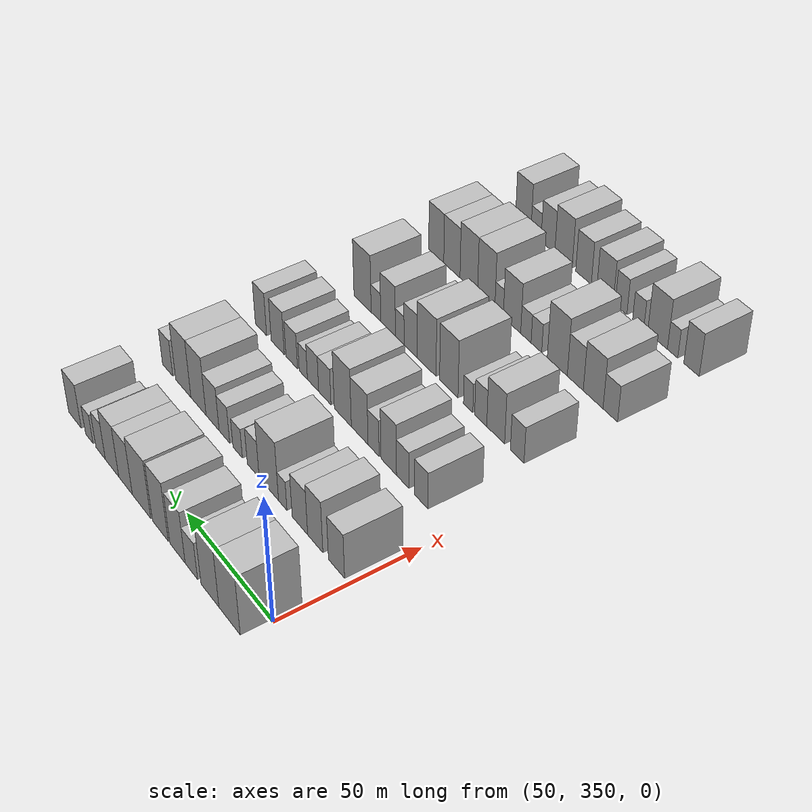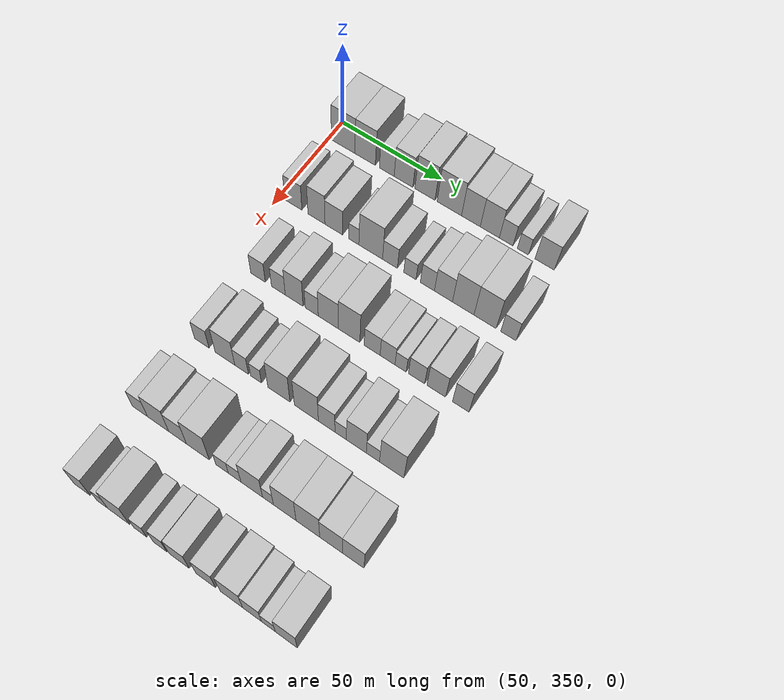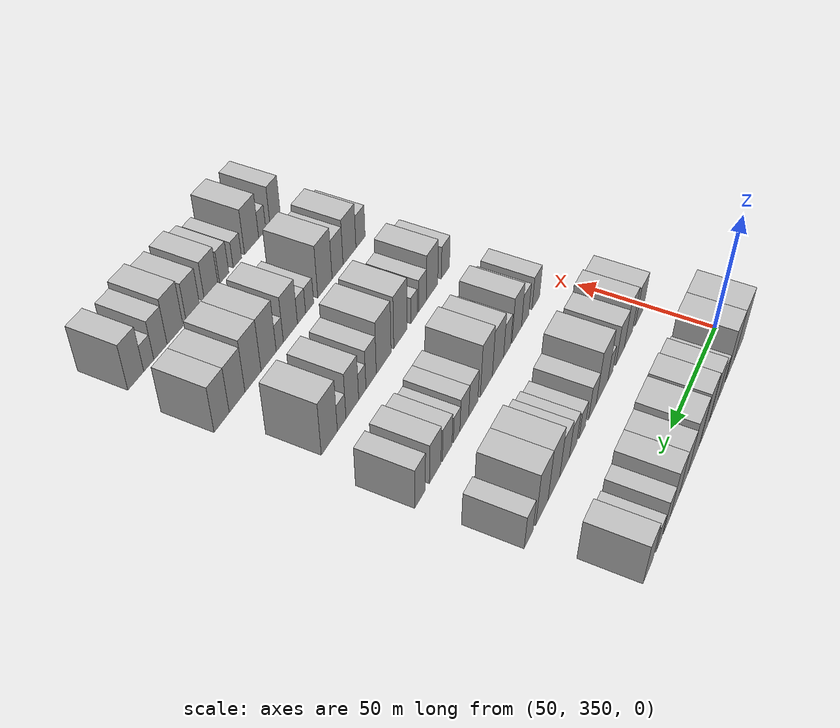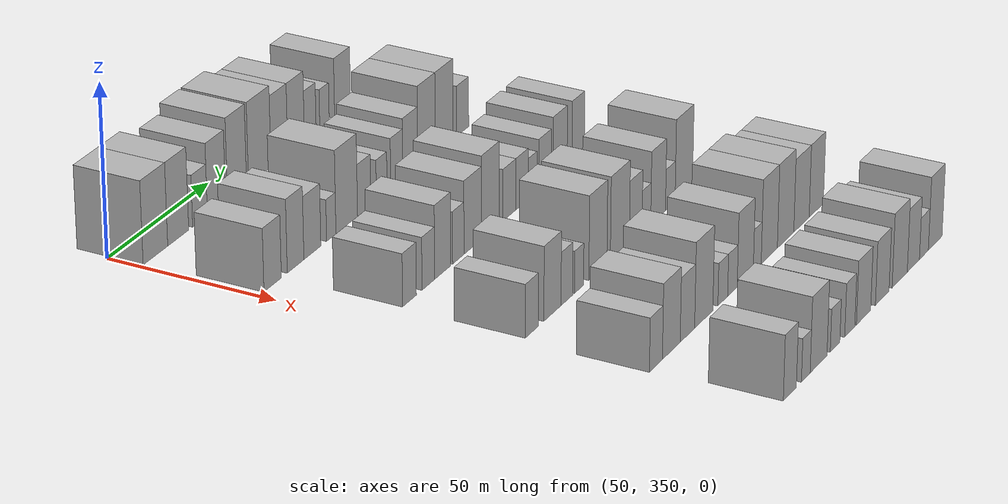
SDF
<sdf version="1.6">
 <world name="default">
  <model name="building_107">
   <static>1</static>
   <pose>50.0000 357.1216 0 0.000000 0.000000 0.000000</pose>
   <link name="link">
    <pose>0 0 12.00 0 0 0</pose>
    <collision name="collision"><geometry><box><size>20.0000 11.9933 24.0000</size></box></geometry></collision>
    <visual name="visual">
     <cast_shadows>0</cast_shadows>
     <geometry><box><size>20.0000 11.9933 24.0000</size></box></geometry>
     <material>
      <script>
       <uri>model://HANNAS_wall/materials/scripts</uri>
       <uri>model://HANNAS_wall/materials/textures</uri>
       <name>vrc/HANNAS_wall</name>
      </script>
     </material>
    </visual>
   </link>
  </model>
  <model name="building_108">
   <static>1</static>
   <pose>50.0000 368.3127 0 0.000000 0.000000 0.000000</pose>
   <link name="link">
    <pose>0 0 12.00 0 0 0</pose>
    <collision name="collision"><geometry><box><size>20.0000 10.3889 24.0000</size></box></geometry></collision>
    <visual name="visual">
     <cast_shadows>0</cast_shadows>
     <geometry><box><size>20.0000 10.3889 24.0000</size></box></geometry>
     <material>
      <script>
       <uri>model://HANNAS_wall/materials/scripts</uri>
       <uri>model://HANNAS_wall/materials/textures</uri>
       <name>vrc/HANNAS_wall</name>
      </script>
     </material>
    </visual>
   </link>
  </model>
  <model name="building_109">
   <static>1</static>
   <pose>50.0000 379.2048 0 0.000000 0.000000 0.000000</pose>
   <link name="link">
    <pose>0 0 7.50 0 0 0</pose>
    <collision name="collision"><geometry><box><size>20.0000 7.3954 15.0000</size></box></geometry></collision>
    <visual name="visual">
     <cast_shadows>0</cast_shadows>
     <geometry><box><size>20.0000 7.3954 15.0000</size></box></geometry>
     <material>
      <script>
       <uri>model://HANNAS_wall/materials/scripts</uri>
       <uri>model://HANNAS_wall/materials/textures</uri>
       <name>vrc/HANNAS_wall</name>
      </script>
     </material>
    </visual>
   </link>
  </model>
  <model name="building_110">
   <static>1</static>
   <pose>50.0000 387.5336 0 0.000000 0.000000 0.000000</pose>
   <link name="link">
    <pose>0 0 10.50 0 0 0</pose>
    <collision name="collision"><geometry><box><size>20.0000 9.2623 21.0000</size></box></geometry></collision>
    <visual name="visual">
     <cast_shadows>0</cast_shadows>
     <geometry><box><size>20.0000 9.2623 21.0000</size></box></geometry>
     <material>
      <script>
       <uri>model://HANNAS_wall/materials/scripts</uri>
       <uri>model://HANNAS_wall/materials/textures</uri>
       <name>vrc/HANNAS_wall</name>
      </script>
     </material>
    </visual>
   </link>
  </model>
  <model name="building_111">
   <static>1</static>
   <pose>50.0000 398.0849 0 0.000000 0.000000 0.000000</pose>
   <link name="link">
    <pose>0 0 12.00 0 0 0</pose>
    <collision name="collision"><geometry><box><size>20.0000 9.8403 24.0000</size></box></geometry></collision>
    <visual name="visual">
     <cast_shadows>0</cast_shadows>
     <geometry><box><size>20.0000 9.8403 24.0000</size></box></geometry>
     <material>
      <script>
       <uri>model://HANNAS_wall/materials/scripts</uri>
       <uri>model://HANNAS_wall/materials/textures</uri>
       <name>vrc/HANNAS_wall</name>
      </script>
     </material>
    </visual>
   </link>
  </model>
  <model name="building_112">
   <static>1</static>
   <pose>50.0000 409.9015 0 0.000000 0.000000 0.000000</pose>
   <link name="link">
    <pose>0 0 12.00 0 0 0</pose>
    <collision name="collision"><geometry><box><size>20.0000 11.7929 24.0000</size></box></geometry></collision>
    <visual name="visual">
     <cast_shadows>0</cast_shadows>
     <geometry><box><size>20.0000 11.7929 24.0000</size></box></geometry>
     <material>
      <script>
       <uri>model://HANNAS_wall/materials/scripts</uri>
       <uri>model://HANNAS_wall/materials/textures</uri>
       <name>vrc/HANNAS_wall</name>
      </script>
     </material>
    </visual>
   </link>
  </model>
  <model name="building_113">
   <static>1</static>
   <pose>50.0000 420.2565 0 0.000000 0.000000 0.000000</pose>
   <link name="link">
    <pose>0 0 10.50 0 0 0</pose>
    <collision name="collision"><geometry><box><size>20.0000 8.9171 21.0000</size></box></geometry></collision>
    <visual name="visual">
     <cast_shadows>0</cast_shadows>
     <geometry><box><size>20.0000 8.9171 21.0000</size></box></geometry>
     <material>
      <script>
       <uri>model://HANNAS_wall/materials/scripts</uri>
       <uri>model://HANNAS_wall/materials/textures</uri>
       <name>vrc/HANNAS_wall</name>
      </script>
     </material>
    </visual>
   </link>
  </model>
  <model name="building_114">
   <static>1</static>
   <pose>50.0000 429.2032 0 0.000000 0.000000 0.000000</pose>
   <link name="link">
    <pose>0 0 10.50 0 0 0</pose>
    <collision name="collision"><geometry><box><size>20.0000 8.9763 21.0000</size></box></geometry></collision>
    <visual name="visual">
     <cast_shadows>0</cast_shadows>
     <geometry><box><size>20.0000 8.9763 21.0000</size></box></geometry>
     <material>
      <script>
       <uri>model://HANNAS_wall/materials/scripts</uri>
       <uri>model://HANNAS_wall/materials/textures</uri>
       <name>vrc/HANNAS_wall</name>
      </script>
     </material>
    </visual>
   </link>
  </model>
  <model name="building_115">
   <static>1</static>
   <pose>50.0000 436.8798 0 0.000000 0.000000 0.000000</pose>
   <link name="link">
    <pose>0 0 7.50 0 0 0</pose>
    <collision name="collision"><geometry><box><size>20.0000 6.3770 15.0000</size></box></geometry></collision>
    <visual name="visual">
     <cast_shadows>0</cast_shadows>
     <geometry><box><size>20.0000 6.3770 15.0000</size></box></geometry>
     <material>
      <script>
       <uri>model://HANNAS_wall/materials/scripts</uri>
       <uri>model://HANNAS_wall/materials/textures</uri>
       <name>vrc/HANNAS_wall</name>
      </script>
     </material>
    </visual>
   </link>
  </model>
  <model name="building_116">
   <static>1</static>
   <pose>50.0000 444.6532 0 0.000000 0.000000 0.000000</pose>
   <link name="link">
    <pose>0 0 6.00 0 0 0</pose>
    <collision name="collision"><geometry><box><size>20.0000 5.1697 12.0000</size></box></geometry></collision>
    <visual name="visual">
     <cast_shadows>0</cast_shadows>
     <geometry><box><size>20.0000 5.1697 12.0000</size></box></geometry>
     <material>
      <script>
       <uri>model://HANNAS_wall/materials/scripts</uri>
       <uri>model://HANNAS_wall/materials/textures</uri>
       <name>vrc/HANNAS_wall</name>
      </script>
     </material>
    </visual>
   </link>
  </model>
  <model name="building_117">
   <static>1</static>
   <pose>50.0000 454.6689 0 0.000000 0.000000 0.000000</pose>
   <link name="link">
    <pose>0 0 9.00 0 0 0</pose>
    <collision name="collision"><geometry><box><size>20.0000 8.8618 18.0000</size></box></geometry></collision>
    <visual name="visual">
     <cast_shadows>0</cast_shadows>
     <geometry><box><size>20.0000 8.8618 18.0000</size></box></geometry>
     <material>
      <script>
       <uri>model://HANNAS_wall/materials/scripts</uri>
       <uri>model://HANNAS_wall/materials/textures</uri>
       <name>vrc/HANNAS_wall</name>
      </script>
     </material>
    </visual>
   </link>
  </model>
  <model name="building_233">
   <static>1</static>
   <pose>85.0000 356.8966 0 0.000000 0.000000 0.000000</pose>
   <link name="link">
    <pose>0 0 9.00 0 0 0</pose>
    <collision name="collision"><geometry><box><size>20.0000 8.7172 18.0000</size></box></geometry></collision>
    <visual name="visual">
     <cast_shadows>0</cast_shadows>
     <geometry><box><size>20.0000 8.7172 18.0000</size></box></geometry>
     <material>
      <script>
       <uri>model://HANNAS_wall/materials/scripts</uri>
       <uri>model://HANNAS_wall/materials/textures</uri>
       <name>vrc/HANNAS_wall</name>
      </script>
     </material>
    </visual>
   </link>
  </model>
  <model name="building_234">
   <static>1</static>
   <pose>85.0000 368.4994 0 0.000000 0.000000 0.000000</pose>
   <link name="link">
    <pose>0 0 10.50 0 0 0</pose>
    <collision name="collision"><geometry><box><size>20.0000 8.4883 21.0000</size></box></geometry></collision>
    <visual name="visual">
     <cast_shadows>0</cast_shadows>
     <geometry><box><size>20.0000 8.4883 21.0000</size></box></geometry>
     <material>
      <script>
       <uri>model://HANNAS_wall/materials/scripts</uri>
       <uri>model://HANNAS_wall/materials/textures</uri>
       <name>vrc/HANNAS_wall</name>
      </script>
     </material>
    </visual>
   </link>
  </model>
  <model name="building_235">
   <static>1</static>
   <pose>85.0000 377.1117 0 0.000000 0.000000 0.000000</pose>
   <link name="link">
    <pose>0 0 9.00 0 0 0</pose>
    <collision name="collision"><geometry><box><size>20.0000 8.7362 18.0000</size></box></geometry></collision>
    <visual name="visual">
     <cast_shadows>0</cast_shadows>
     <geometry><box><size>20.0000 8.7362 18.0000</size></box></geometry>
     <material>
      <script>
       <uri>model://HANNAS_wall/materials/scripts</uri>
       <uri>model://HANNAS_wall/materials/textures</uri>
       <name>vrc/HANNAS_wall</name>
      </script>
     </material>
    </visual>
   </link>
  </model>
  <model name="building_236">
   <static>1</static>
   <pose>85.0000 386.9228 0 0.000000 0.000000 0.000000</pose>
   <link name="link">
    <pose>0 0 6.00 0 0 0</pose>
    <collision name="collision"><geometry><box><size>20.0000 4.8861 12.0000</size></box></geometry></collision>
    <visual name="visual">
     <cast_shadows>0</cast_shadows>
     <geometry><box><size>20.0000 4.8861 12.0000</size></box></geometry>
     <material>
      <script>
       <uri>model://HANNAS_wall/materials/scripts</uri>
       <uri>model://HANNAS_wall/materials/textures</uri>
       <name>vrc/HANNAS_wall</name>
      </script>
     </material>
    </visual>
   </link>
  </model>
  <model name="building_237">
   <static>1</static>
   <pose>85.0000 395.0872 0 0.000000 0.000000 0.000000</pose>
   <link name="link">
    <pose>0 0 12.00 0 0 0</pose>
    <collision name="collision"><geometry><box><size>20.0000 11.4426 24.0000</size></box></geometry></collision>
    <visual name="visual">
     <cast_shadows>0</cast_shadows>
     <geometry><box><size>20.0000 11.4426 24.0000</size></box></geometry>
     <material>
      <script>
       <uri>model://HANNAS_wall/materials/scripts</uri>
       <uri>model://HANNAS_wall/materials/textures</uri>
       <name>vrc/HANNAS_wall</name>
      </script>
     </material>
    </visual>
   </link>
  </model>
  <model name="building_238">
   <static>1</static>
   <pose>85.0000 404.3621 0 0.000000 0.000000 0.000000</pose>
   <link name="link">
    <pose>0 0 7.50 0 0 0</pose>
    <collision name="collision"><geometry><box><size>20.0000 7.1072 15.0000</size></box></geometry></collision>
    <visual name="visual">
     <cast_shadows>0</cast_shadows>
     <geometry><box><size>20.0000 7.1072 15.0000</size></box></geometry>
     <material>
      <script>
       <uri>model://HANNAS_wall/materials/scripts</uri>
       <uri>model://HANNAS_wall/materials/textures</uri>
       <name>vrc/HANNAS_wall</name>
      </script>
     </material>
    </visual>
   </link>
  </model>
  <model name="building_239">
   <static>1</static>
   <pose>85.0000 413.8233 0 0.000000 0.000000 0.000000</pose>
   <link name="link">
    <pose>0 0 6.00 0 0 0</pose>
    <collision name="collision"><geometry><box><size>20.0000 5.8154 12.0000</size></box></geometry></collision>
    <visual name="visual">
     <cast_shadows>0</cast_shadows>
     <geometry><box><size>20.0000 5.8154 12.0000</size></box></geometry>
     <material>
      <script>
       <uri>model://HANNAS_wall/materials/scripts</uri>
       <uri>model://HANNAS_wall/materials/textures</uri>
       <name>vrc/HANNAS_wall</name>
      </script>
     </material>
    </visual>
   </link>
  </model>
  <model name="building_240">
   <static>1</static>
   <pose>85.0000 422.0443 0 0.000000 0.000000 0.000000</pose>
   <link name="link">
    <pose>0 0 7.50 0 0 0</pose>
    <collision name="collision"><geometry><box><size>20.0000 6.6266 15.0000</size></box></geometry></collision>
    <visual name="visual">
     <cast_shadows>0</cast_shadows>
     <geometry><box><size>20.0000 6.6266 15.0000</size></box></geometry>
     <material>
      <script>
       <uri>model://HANNAS_wall/materials/scripts</uri>
       <uri>model://HANNAS_wall/materials/textures</uri>
       <name>vrc/HANNAS_wall</name>
      </script>
     </material>
    </visual>
   </link>
  </model>
  <model name="building_241">
   <static>1</static>
   <pose>85.0000 429.5247 0 0.000000 0.000000 0.000000</pose>
   <link name="link">
    <pose>0 0 9.00 0 0 0</pose>
    <collision name="collision"><geometry><box><size>20.0000 8.3342 18.0000</size></box></geometry></collision>
    <visual name="visual">
     <cast_shadows>0</cast_shadows>
     <geometry><box><size>20.0000 8.3342 18.0000</size></box></geometry>
     <material>
      <script>
       <uri>model://HANNAS_wall/materials/scripts</uri>
       <uri>model://HANNAS_wall/materials/textures</uri>
       <name>vrc/HANNAS_wall</name>
      </script>
     </material>
    </visual>
   </link>
  </model>
  <model name="building_242">
   <static>1</static>
   <pose>85.0000 438.6293 0 0.000000 0.000000 0.000000</pose>
   <link name="link">
    <pose>0 0 12.00 0 0 0</pose>
    <collision name="collision"><geometry><box><size>20.0000 9.8749 24.0000</size></box></geometry></collision>
    <visual name="visual">
     <cast_shadows>0</cast_shadows>
     <geometry><box><size>20.0000 9.8749 24.0000</size></box></geometry>
     <material>
      <script>
       <uri>model://HANNAS_wall/materials/scripts</uri>
       <uri>model://HANNAS_wall/materials/textures</uri>
       <name>vrc/HANNAS_wall</name>
      </script>
     </material>
    </visual>
   </link>
  </model>
  <model name="building_243">
   <static>1</static>
   <pose>85.0000 448.6095 0 0.000000 0.000000 0.000000</pose>
   <link name="link">
    <pose>0 0 12.00 0 0 0</pose>
    <collision name="collision"><geometry><box><size>20.0000 10.0855 24.0000</size></box></geometry></collision>
    <visual name="visual">
     <cast_shadows>0</cast_shadows>
     <geometry><box><size>20.0000 10.0855 24.0000</size></box></geometry>
     <material>
      <script>
       <uri>model://HANNAS_wall/materials/scripts</uri>
       <uri>model://HANNAS_wall/materials/textures</uri>
       <name>vrc/HANNAS_wall</name>
      </script>
     </material>
    </visual>
   </link>
  </model>
  <model name="building_244">
   <static>1</static>
   <pose>85.0000 459.1244 0 0.000000 0.000000 0.000000</pose>
   <link name="link">
    <pose>0 0 7.50 0 0 0</pose>
    <collision name="collision"><geometry><box><size>20.0000 6.9444 15.0000</size></box></geometry></collision>
    <visual name="visual">
     <cast_shadows>0</cast_shadows>
     <geometry><box><size>20.0000 6.9444 15.0000</size></box></geometry>
     <material>
      <script>
       <uri>model://HANNAS_wall/materials/scripts</uri>
       <uri>model://HANNAS_wall/materials/textures</uri>
       <name>vrc/HANNAS_wall</name>
      </script>
     </material>
    </visual>
   </link>
  </model>
  <model name="building_356">
   <static>1</static>
   <pose>120.0000 365.2817 0 0.000000 0.000000 0.000000</pose>
   <link name="link">
    <pose>0 0 7.50 0 0 0</pose>
    <collision name="collision"><geometry><box><size>20.0000 7.1907 15.0000</size></box></geometry></collision>
    <visual name="visual">
     <cast_shadows>0</cast_shadows>
     <geometry><box><size>20.0000 7.1907 15.0000</size></box></geometry>
     <material>
      <script>
       <uri>model://HANNAS_wall/materials/scripts</uri>
       <uri>model://HANNAS_wall/materials/textures</uri>
       <name>vrc/HANNAS_wall</name>
      </script>
     </material>
    </visual>
   </link>
  </model>
  <model name="building_357">
   <static>1</static>
   <pose>120.0000 375.2413 0 0.000000 0.000000 0.000000</pose>
   <link name="link">
    <pose>0 0 7.50 0 0 0</pose>
    <collision name="collision"><geometry><box><size>20.0000 6.7286 15.0000</size></box></geometry></collision>
    <visual name="visual">
     <cast_shadows>0</cast_shadows>
     <geometry><box><size>20.0000 6.7286 15.0000</size></box></geometry>
     <material>
      <script>
       <uri>model://HANNAS_wall/materials/scripts</uri>
       <uri>model://HANNAS_wall/materials/textures</uri>
       <name>vrc/HANNAS_wall</name>
      </script>
     </material>
    </visual>
   </link>
  </model>
  <model name="building_358">
   <static>1</static>
   <pose>120.0000 382.9077 0 0.000000 0.000000 0.000000</pose>
   <link name="link">
    <pose>0 0 10.50 0 0 0</pose>
    <collision name="collision"><geometry><box><size>20.0000 8.6042 21.0000</size></box></geometry></collision>
    <visual name="visual">
     <cast_shadows>0</cast_shadows>
     <geometry><box><size>20.0000 8.6042 21.0000</size></box></geometry>
     <material>
      <script>
       <uri>model://HANNAS_wall/materials/scripts</uri>
       <uri>model://HANNAS_wall/materials/textures</uri>
       <name>vrc/HANNAS_wall</name>
      </script>
     </material>
    </visual>
   </link>
  </model>
  <model name="building_359">
   <static>1</static>
   <pose>120.0000 391.3324 0 0.000000 0.000000 0.000000</pose>
   <link name="link">
    <pose>0 0 7.50 0 0 0</pose>
    <collision name="collision"><geometry><box><size>20.0000 6.2453 15.0000</size></box></geometry></collision>
    <visual name="visual">
     <cast_shadows>0</cast_shadows>
     <geometry><box><size>20.0000 6.2453 15.0000</size></box></geometry>
     <material>
      <script>
       <uri>model://HANNAS_wall/materials/scripts</uri>
       <uri>model://HANNAS_wall/materials/textures</uri>
       <name>vrc/HANNAS_wall</name>
      </script>
     </material>
    </visual>
   </link>
  </model>
  <model name="building_360">
   <static>1</static>
   <pose>120.0000 399.2431 0 0.000000 0.000000 0.000000</pose>
   <link name="link">
    <pose>0 0 10.50 0 0 0</pose>
    <collision name="collision"><geometry><box><size>20.0000 9.5761 21.0000</size></box></geometry></collision>
    <visual name="visual">
     <cast_shadows>0</cast_shadows>
     <geometry><box><size>20.0000 9.5761 21.0000</size></box></geometry>
     <material>
      <script>
       <uri>model://HANNAS_wall/materials/scripts</uri>
       <uri>model://HANNAS_wall/materials/textures</uri>
       <name>vrc/HANNAS_wall</name>
      </script>
     </material>
    </visual>
   </link>
  </model>
  <model name="building_361">
   <static>1</static>
   <pose>120.0000 409.0201 0 0.000000 0.000000 0.000000</pose>
   <link name="link">
    <pose>0 0 12.00 0 0 0</pose>
    <collision name="collision"><geometry><box><size>20.0000 9.9779 24.0000</size></box></geometry></collision>
    <visual name="visual">
     <cast_shadows>0</cast_shadows>
     <geometry><box><size>20.0000 9.9779 24.0000</size></box></geometry>
     <material>
      <script>
       <uri>model://HANNAS_wall/materials/scripts</uri>
       <uri>model://HANNAS_wall/materials/textures</uri>
       <name>vrc/HANNAS_wall</name>
      </script>
     </material>
    </visual>
   </link>
  </model>
  <model name="building_362">
   <static>1</static>
   <pose>120.0000 419.6896 0 0.000000 0.000000 0.000000</pose>
   <link name="link">
    <pose>0 0 7.50 0 0 0</pose>
    <collision name="collision"><geometry><box><size>20.0000 7.3611 15.0000</size></box></geometry></collision>
    <visual name="visual">
     <cast_shadows>0</cast_shadows>
     <geometry><box><size>20.0000 7.3611 15.0000</size></box></geometry>
     <material>
      <script>
       <uri>model://HANNAS_wall/materials/scripts</uri>
       <uri>model://HANNAS_wall/materials/textures</uri>
       <name>vrc/HANNAS_wall</name>
      </script>
     </material>
    </visual>
   </link>
  </model>
  <model name="building_363">
   <static>1</static>
   <pose>120.0000 426.7917 0 0.000000 0.000000 0.000000</pose>
   <link name="link">
    <pose>0 0 7.50 0 0 0</pose>
    <collision name="collision"><geometry><box><size>20.0000 6.8429 15.0000</size></box></geometry></collision>
    <visual name="visual">
     <cast_shadows>0</cast_shadows>
     <geometry><box><size>20.0000 6.8429 15.0000</size></box></geometry>
     <material>
      <script>
       <uri>model://HANNAS_wall/materials/scripts</uri>
       <uri>model://HANNAS_wall/materials/textures</uri>
       <name>vrc/HANNAS_wall</name>
      </script>
     </material>
    </visual>
   </link>
  </model>
  <model name="building_364">
   <static>1</static>
   <pose>120.0000 432.7662 0 0.000000 0.000000 0.000000</pose>
   <link name="link">
    <pose>0 0 6.00 0 0 0</pose>
    <collision name="collision"><geometry><box><size>20.0000 5.1061 12.0000</size></box></geometry></collision>
    <visual name="visual">
     <cast_shadows>0</cast_shadows>
     <geometry><box><size>20.0000 5.1061 12.0000</size></box></geometry>
     <material>
      <script>
       <uri>model://HANNAS_wall/materials/scripts</uri>
       <uri>model://HANNAS_wall/materials/textures</uri>
       <name>vrc/HANNAS_wall</name>
      </script>
     </material>
    </visual>
   </link>
  </model>
  <model name="building_365">
   <static>1</static>
   <pose>120.0000 439.9661 0 0.000000 0.000000 0.000000</pose>
   <link name="link">
    <pose>0 0 7.50 0 0 0</pose>
    <collision name="collision"><geometry><box><size>20.0000 7.2938 15.0000</size></box></geometry></collision>
    <visual name="visual">
     <cast_shadows>0</cast_shadows>
     <geometry><box><size>20.0000 7.2938 15.0000</size></box></geometry>
     <material>
      <script>
       <uri>model://HANNAS_wall/materials/scripts</uri>
       <uri>model://HANNAS_wall/materials/textures</uri>
       <name>vrc/HANNAS_wall</name>
      </script>
     </material>
    </visual>
   </link>
  </model>
  <model name="building_366">
   <static>1</static>
   <pose>120.0000 448.7859 0 0.000000 0.000000 0.000000</pose>
   <link name="link">
    <pose>0 0 9.00 0 0 0</pose>
    <collision name="collision"><geometry><box><size>20.0000 8.3458 18.0000</size></box></geometry></collision>
    <visual name="visual">
     <cast_shadows>0</cast_shadows>
     <geometry><box><size>20.0000 8.3458 18.0000</size></box></geometry>
     <material>
      <script>
       <uri>model://HANNAS_wall/materials/scripts</uri>
       <uri>model://HANNAS_wall/materials/textures</uri>
       <name>vrc/HANNAS_wall</name>
      </script>
     </material>
    </visual>
   </link>
  </model>
  <model name="building_367">
   <static>1</static>
   <pose>120.0000 459.6276 0 0.000000 0.000000 0.000000</pose>
   <link name="link">
    <pose>0 0 9.00 0 0 0</pose>
    <collision name="collision"><geometry><box><size>20.0000 7.3377 18.0000</size></box></geometry></collision>
    <visual name="visual">
     <cast_shadows>0</cast_shadows>
     <geometry><box><size>20.0000 7.3377 18.0000</size></box></geometry>
     <material>
      <script>
       <uri>model://HANNAS_wall/materials/scripts</uri>
       <uri>model://HANNAS_wall/materials/textures</uri>
       <name>vrc/HANNAS_wall</name>
      </script>
     </material>
    </visual>
   </link>
  </model>
  <model name="building_484">
   <static>1</static>
   <pose>155.0000 364.7329 0 0.000000 0.000000 0.000000</pose>
   <link name="link">
    <pose>0 0 7.50 0 0 0</pose>
    <collision name="collision"><geometry><box><size>20.0000 7.0130 15.0000</size></box></geometry></collision>
    <visual name="visual">
     <cast_shadows>0</cast_shadows>
     <geometry><box><size>20.0000 7.0130 15.0000</size></box></geometry>
     <material>
      <script>
       <uri>model://HANNAS_wall/materials/scripts</uri>
       <uri>model://HANNAS_wall/materials/textures</uri>
       <name>vrc/HANNAS_wall</name>
      </script>
     </material>
    </visual>
   </link>
  </model>
  <model name="building_485">
   <static>1</static>
   <pose>155.0000 375.9579 0 0.000000 0.000000 0.000000</pose>
   <link name="link">
    <pose>0 0 10.50 0 0 0</pose>
    <collision name="collision"><geometry><box><size>20.0000 9.4370 21.0000</size></box></geometry></collision>
    <visual name="visual">
     <cast_shadows>0</cast_shadows>
     <geometry><box><size>20.0000 9.4370 21.0000</size></box></geometry>
     <material>
      <script>
       <uri>model://HANNAS_wall/materials/scripts</uri>
       <uri>model://HANNAS_wall/materials/textures</uri>
       <name>vrc/HANNAS_wall</name>
      </script>
     </material>
    </visual>
   </link>
  </model>
  <model name="building_486">
   <static>1</static>
   <pose>155.0000 383.9212 0 0.000000 0.000000 0.000000</pose>
   <link name="link">
    <pose>0 0 7.50 0 0 0</pose>
    <collision name="collision"><geometry><box><size>20.0000 6.4896 15.0000</size></box></geometry></collision>
    <visual name="visual">
     <cast_shadows>0</cast_shadows>
     <geometry><box><size>20.0000 6.4896 15.0000</size></box></geometry>
     <material>
      <script>
       <uri>model://HANNAS_wall/materials/scripts</uri>
       <uri>model://HANNAS_wall/materials/textures</uri>
       <name>vrc/HANNAS_wall</name>
      </script>
     </material>
    </visual>
   </link>
  </model>
  <model name="building_487">
   <static>1</static>
   <pose>155.0000 390.7141 0 0.000000 0.000000 0.000000</pose>
   <link name="link">
    <pose>0 0 6.00 0 0 0</pose>
    <collision name="collision"><geometry><box><size>20.0000 5.0963 12.0000</size></box></geometry></collision>
    <visual name="visual">
     <cast_shadows>0</cast_shadows>
     <geometry><box><size>20.0000 5.0963 12.0000</size></box></geometry>
     <material>
      <script>
       <uri>model://HANNAS_wall/materials/scripts</uri>
       <uri>model://HANNAS_wall/materials/textures</uri>
       <name>vrc/HANNAS_wall</name>
      </script>
     </material>
    </visual>
   </link>
  </model>
  <model name="building_488">
   <static>1</static>
   <pose>155.0000 401.4008 0 0.000000 0.000000 0.000000</pose>
   <link name="link">
    <pose>0 0 12.00 0 0 0</pose>
    <collision name="collision"><geometry><box><size>20.0000 10.2771 24.0000</size></box></geometry></collision>
    <visual name="visual">
     <cast_shadows>0</cast_shadows>
     <geometry><box><size>20.0000 10.2771 24.0000</size></box></geometry>
     <material>
      <script>
       <uri>model://HANNAS_wall/materials/scripts</uri>
       <uri>model://HANNAS_wall/materials/textures</uri>
       <name>vrc/HANNAS_wall</name>
      </script>
     </material>
    </visual>
   </link>
  </model>
  <model name="building_489">
   <static>1</static>
   <pose>155.0000 414.0420 0 0.000000 0.000000 0.000000</pose>
   <link name="link">
    <pose>0 0 12.00 0 0 0</pose>
    <collision name="collision"><geometry><box><size>20.0000 11.0053 24.0000</size></box></geometry></collision>
    <visual name="visual">
     <cast_shadows>0</cast_shadows>
     <geometry><box><size>20.0000 11.0053 24.0000</size></box></geometry>
     <material>
      <script>
       <uri>model://HANNAS_wall/materials/scripts</uri>
       <uri>model://HANNAS_wall/materials/textures</uri>
       <name>vrc/HANNAS_wall</name>
      </script>
     </material>
    </visual>
   </link>
  </model>
  <model name="building_490">
   <static>1</static>
   <pose>155.0000 423.2867 0 0.000000 0.000000 0.000000</pose>
   <link name="link">
    <pose>0 0 9.00 0 0 0</pose>
    <collision name="collision"><geometry><box><size>20.0000 7.4840 18.0000</size></box></geometry></collision>
    <visual name="visual">
     <cast_shadows>0</cast_shadows>
     <geometry><box><size>20.0000 7.4840 18.0000</size></box></geometry>
     <material>
      <script>
       <uri>model://HANNAS_wall/materials/scripts</uri>
       <uri>model://HANNAS_wall/materials/textures</uri>
       <name>vrc/HANNAS_wall</name>
      </script>
     </material>
    </visual>
   </link>
  </model>
  <model name="building_491">
   <static>1</static>
   <pose>155.0000 429.6019 0 0.000000 0.000000 0.000000</pose>
   <link name="link">
    <pose>0 0 6.00 0 0 0</pose>
    <collision name="collision"><geometry><box><size>20.0000 5.1466 12.0000</size></box></geometry></collision>
    <visual name="visual">
     <cast_shadows>0</cast_shadows>
     <geometry><box><size>20.0000 5.1466 12.0000</size></box></geometry>
     <material>
      <script>
       <uri>model://HANNAS_wall/materials/scripts</uri>
       <uri>model://HANNAS_wall/materials/textures</uri>
       <name>vrc/HANNAS_wall</name>
      </script>
     </material>
    </visual>
   </link>
  </model>
  <model name="building_492">
   <static>1</static>
   <pose>155.0000 436.5955 0 0.000000 0.000000 0.000000</pose>
   <link name="link">
    <pose>0 0 10.50 0 0 0</pose>
    <collision name="collision"><geometry><box><size>20.0000 8.8405 21.0000</size></box></geometry></collision>
    <visual name="visual">
     <cast_shadows>0</cast_shadows>
     <geometry><box><size>20.0000 8.8405 21.0000</size></box></geometry>
     <material>
      <script>
       <uri>model://HANNAS_wall/materials/scripts</uri>
       <uri>model://HANNAS_wall/materials/textures</uri>
       <name>vrc/HANNAS_wall</name>
      </script>
     </material>
    </visual>
   </link>
  </model>
  <model name="building_493">
   <static>1</static>
   <pose>155.0000 443.9247 0 0.000000 0.000000 0.000000</pose>
   <link name="link">
    <pose>0 0 6.00 0 0 0</pose>
    <collision name="collision"><geometry><box><size>20.0000 5.8177 12.0000</size></box></geometry></collision>
    <visual name="visual">
     <cast_shadows>0</cast_shadows>
     <geometry><box><size>20.0000 5.8177 12.0000</size></box></geometry>
     <material>
      <script>
       <uri>model://HANNAS_wall/materials/scripts</uri>
       <uri>model://HANNAS_wall/materials/textures</uri>
       <name>vrc/HANNAS_wall</name>
      </script>
     </material>
    </visual>
   </link>
  </model>
  <model name="building_494">
   <static>1</static>
   <pose>155.0000 452.1549 0 0.000000 0.000000 0.000000</pose>
   <link name="link">
    <pose>0 0 12.00 0 0 0</pose>
    <collision name="collision"><geometry><box><size>20.0000 10.6428 24.0000</size></box></geometry></collision>
    <visual name="visual">
     <cast_shadows>0</cast_shadows>
     <geometry><box><size>20.0000 10.6428 24.0000</size></box></geometry>
     <material>
      <script>
       <uri>model://HANNAS_wall/materials/scripts</uri>
       <uri>model://HANNAS_wall/materials/textures</uri>
       <name>vrc/HANNAS_wall</name>
      </script>
     </material>
    </visual>
   </link>
  </model>
  <model name="building_615">
   <static>1</static>
   <pose>190.0000 363.1716 0 0.000000 0.000000 0.000000</pose>
   <link name="link">
    <pose>0 0 7.50 0 0 0</pose>
    <collision name="collision"><geometry><box><size>20.0000 7.2971 15.0000</size></box></geometry></collision>
    <visual name="visual">
     <cast_shadows>0</cast_shadows>
     <geometry><box><size>20.0000 7.2971 15.0000</size></box></geometry>
     <material>
      <script>
       <uri>model://HANNAS_wall/materials/scripts</uri>
       <uri>model://HANNAS_wall/materials/textures</uri>
       <name>vrc/HANNAS_wall</name>
      </script>
     </material>
    </visual>
   </link>
  </model>
  <model name="building_616">
   <static>1</static>
   <pose>190.0000 371.8565 0 0.000000 0.000000 0.000000</pose>
   <link name="link">
    <pose>0 0 10.50 0 0 0</pose>
    <collision name="collision"><geometry><box><size>20.0000 10.0728 21.0000</size></box></geometry></collision>
    <visual name="visual">
     <cast_shadows>0</cast_shadows>
     <geometry><box><size>20.0000 10.0728 21.0000</size></box></geometry>
     <material>
      <script>
       <uri>model://HANNAS_wall/materials/scripts</uri>
       <uri>model://HANNAS_wall/materials/textures</uri>
       <name>vrc/HANNAS_wall</name>
      </script>
     </material>
    </visual>
   </link>
  </model>
  <model name="building_617">
   <static>1</static>
   <pose>190.0000 381.0560 0 0.000000 0.000000 0.000000</pose>
   <link name="link">
    <pose>0 0 9.00 0 0 0</pose>
    <collision name="collision"><geometry><box><size>20.0000 8.3263 18.0000</size></box></geometry></collision>
    <visual name="visual">
     <cast_shadows>0</cast_shadows>
     <geometry><box><size>20.0000 8.3263 18.0000</size></box></geometry>
     <material>
      <script>
       <uri>model://HANNAS_wall/materials/scripts</uri>
       <uri>model://HANNAS_wall/materials/textures</uri>
       <name>vrc/HANNAS_wall</name>
      </script>
     </material>
    </visual>
   </link>
  </model>
  <model name="building_618">
   <static>1</static>
   <pose>190.0000 390.5273 0 0.000000 0.000000 0.000000</pose>
   <link name="link">
    <pose>0 0 12.00 0 0 0</pose>
    <collision name="collision"><geometry><box><size>20.0000 10.6161 24.0000</size></box></geometry></collision>
    <visual name="visual">
     <cast_shadows>0</cast_shadows>
     <geometry><box><size>20.0000 10.6161 24.0000</size></box></geometry>
     <material>
      <script>
       <uri>model://HANNAS_wall/materials/scripts</uri>
       <uri>model://HANNAS_wall/materials/textures</uri>
       <name>vrc/HANNAS_wall</name>
      </script>
     </material>
    </visual>
   </link>
  </model>
  <model name="building_619">
   <static>1</static>
   <pose>190.0000 401.7204 0 0.000000 0.000000 0.000000</pose>
   <link name="link">
    <pose>0 0 6.00 0 0 0</pose>
    <collision name="collision"><geometry><box><size>20.0000 5.7702 12.0000</size></box></geometry></collision>
    <visual name="visual">
     <cast_shadows>0</cast_shadows>
     <geometry><box><size>20.0000 5.7702 12.0000</size></box></geometry>
     <material>
      <script>
       <uri>model://HANNAS_wall/materials/scripts</uri>
       <uri>model://HANNAS_wall/materials/textures</uri>
       <name>vrc/HANNAS_wall</name>
      </script>
     </material>
    </visual>
   </link>
  </model>
  <model name="building_620">
   <static>1</static>
   <pose>190.0000 407.4704 0 0.000000 0.000000 0.000000</pose>
   <link name="link">
    <pose>0 0 6.00 0 0 0</pose>
    <collision name="collision"><geometry><box><size>20.0000 5.7297 12.0000</size></box></geometry></collision>
    <visual name="visual">
     <cast_shadows>0</cast_shadows>
     <geometry><box><size>20.0000 5.7297 12.0000</size></box></geometry>
     <material>
      <script>
       <uri>model://HANNAS_wall/materials/scripts</uri>
       <uri>model://HANNAS_wall/materials/textures</uri>
       <name>vrc/HANNAS_wall</name>
      </script>
     </material>
    </visual>
   </link>
  </model>
  <model name="building_621">
   <static>1</static>
   <pose>190.0000 415.1941 0 0.000000 0.000000 0.000000</pose>
   <link name="link">
    <pose>0 0 10.50 0 0 0</pose>
    <collision name="collision"><geometry><box><size>20.0000 9.7178 21.0000</size></box></geometry></collision>
    <visual name="visual">
     <cast_shadows>0</cast_shadows>
     <geometry><box><size>20.0000 9.7178 21.0000</size></box></geometry>
     <material>
      <script>
       <uri>model://HANNAS_wall/materials/scripts</uri>
       <uri>model://HANNAS_wall/materials/textures</uri>
       <name>vrc/HANNAS_wall</name>
      </script>
     </material>
    </visual>
   </link>
  </model>
  <model name="building_622">
   <static>1</static>
   <pose>190.0000 422.4600 0 0.000000 0.000000 0.000000</pose>
   <link name="link">
    <pose>0 0 6.00 0 0 0</pose>
    <collision name="collision"><geometry><box><size>20.0000 4.8141 12.0000</size></box></geometry></collision>
    <visual name="visual">
     <cast_shadows>0</cast_shadows>
     <geometry><box><size>20.0000 4.8141 12.0000</size></box></geometry>
     <material>
      <script>
       <uri>model://HANNAS_wall/materials/scripts</uri>
       <uri>model://HANNAS_wall/materials/textures</uri>
       <name>vrc/HANNAS_wall</name>
      </script>
     </material>
    </visual>
   </link>
  </model>
  <model name="building_623">
   <static>1</static>
   <pose>190.0000 429.8571 0 0.000000 0.000000 0.000000</pose>
   <link name="link">
    <pose>0 0 12.00 0 0 0</pose>
    <collision name="collision"><geometry><box><size>20.0000 9.9801 24.0000</size></box></geometry></collision>
    <visual name="visual">
     <cast_shadows>0</cast_shadows>
     <geometry><box><size>20.0000 9.9801 24.0000</size></box></geometry>
     <material>
      <script>
       <uri>model://HANNAS_wall/materials/scripts</uri>
       <uri>model://HANNAS_wall/materials/textures</uri>
       <name>vrc/HANNAS_wall</name>
      </script>
     </material>
    </visual>
   </link>
  </model>
  <model name="building_624">
   <static>1</static>
   <pose>190.0000 440.0001 0 0.000000 0.000000 0.000000</pose>
   <link name="link">
    <pose>0 0 12.00 0 0 0</pose>
    <collision name="collision"><geometry><box><size>20.0000 10.3059 24.0000</size></box></geometry></collision>
    <visual name="visual">
     <cast_shadows>0</cast_shadows>
     <geometry><box><size>20.0000 10.3059 24.0000</size></box></geometry>
     <material>
      <script>
       <uri>model://HANNAS_wall/materials/scripts</uri>
       <uri>model://HANNAS_wall/materials/textures</uri>
       <name>vrc/HANNAS_wall</name>
      </script>
     </material>
    </visual>
   </link>
  </model>
  <model name="building_625">
   <static>1</static>
   <pose>190.0000 450.0278 0 0.000000 0.000000 0.000000</pose>
   <link name="link">
    <pose>0 0 10.50 0 0 0</pose>
    <collision name="collision"><geometry><box><size>20.0000 9.7494 21.0000</size></box></geometry></collision>
    <visual name="visual">
     <cast_shadows>0</cast_shadows>
     <geometry><box><size>20.0000 9.7494 21.0000</size></box></geometry>
     <material>
      <script>
       <uri>model://HANNAS_wall/materials/scripts</uri>
       <uri>model://HANNAS_wall/materials/textures</uri>
       <name>vrc/HANNAS_wall</name>
      </script>
     </material>
    </visual>
   </link>
  </model>
  <model name="building_626">
   <static>1</static>
   <pose>190.0000 459.4779 0 0.000000 0.000000 0.000000</pose>
   <link name="link">
    <pose>0 0 10.50 0 0 0</pose>
    <collision name="collision"><geometry><box><size>20.0000 9.1508 21.0000</size></box></geometry></collision>
    <visual name="visual">
     <cast_shadows>0</cast_shadows>
     <geometry><box><size>20.0000 9.1508 21.0000</size></box></geometry>
     <material>
      <script>
       <uri>model://HANNAS_wall/materials/scripts</uri>
       <uri>model://HANNAS_wall/materials/textures</uri>
       <name>vrc/HANNAS_wall</name>
      </script>
     </material>
    </visual>
   </link>
  </model>
  <model name="building_739">
   <static>1</static>
   <pose>225.0000 365.2777 0 0.000000 0.000000 0.000000</pose>
   <link name="link">
    <pose>0 0 9.00 0 0 0</pose>
    <collision name="collision"><geometry><box><size>20.0000 7.6377 18.0000</size></box></geometry></collision>
    <visual name="visual">
     <cast_shadows>0</cast_shadows>
     <geometry><box><size>20.0000 7.6377 18.0000</size></box></geometry>
     <material>
      <script>
       <uri>model://HANNAS_wall/materials/scripts</uri>
       <uri>model://HANNAS_wall/materials/textures</uri>
       <name>vrc/HANNAS_wall</name>
      </script>
     </material>
    </visual>
   </link>
  </model>
  <model name="building_740">
   <static>1</static>
   <pose>225.0000 374.6947 0 0.000000 0.000000 0.000000</pose>
   <link name="link">
    <pose>0 0 6.00 0 0 0</pose>
    <collision name="collision"><geometry><box><size>20.0000 5.1962 12.0000</size></box></geometry></collision>
    <visual name="visual">
     <cast_shadows>0</cast_shadows>
     <geometry><box><size>20.0000 5.1962 12.0000</size></box></geometry>
     <material>
      <script>
       <uri>model://HANNAS_wall/materials/scripts</uri>
       <uri>model://HANNAS_wall/materials/textures</uri>
       <name>vrc/HANNAS_wall</name>
      </script>
     </material>
    </visual>
   </link>
  </model>
  <model name="building_741">
   <static>1</static>
   <pose>225.0000 382.3429 0 0.000000 0.000000 0.000000</pose>
   <link name="link">
    <pose>0 0 10.50 0 0 0</pose>
    <collision name="collision"><geometry><box><size>20.0000 10.1002 21.0000</size></box></geometry></collision>
    <visual name="visual">
     <cast_shadows>0</cast_shadows>
     <geometry><box><size>20.0000 10.1002 21.0000</size></box></geometry>
     <material>
      <script>
       <uri>model://HANNAS_wall/materials/scripts</uri>
       <uri>model://HANNAS_wall/materials/textures</uri>
       <name>vrc/HANNAS_wall</name>
      </script>
     </material>
    </visual>
   </link>
  </model>
  <model name="building_742">
   <static>1</static>
   <pose>225.0000 392.3152 0 0.000000 0.000000 0.000000</pose>
   <link name="link">
    <pose>0 0 6.00 0 0 0</pose>
    <collision name="collision"><geometry><box><size>20.0000 5.8446 12.0000</size></box></geometry></collision>
    <visual name="visual">
     <cast_shadows>0</cast_shadows>
     <geometry><box><size>20.0000 5.8446 12.0000</size></box></geometry>
     <material>
      <script>
       <uri>model://HANNAS_wall/materials/scripts</uri>
       <uri>model://HANNAS_wall/materials/textures</uri>
       <name>vrc/HANNAS_wall</name>
      </script>
     </material>
    </visual>
   </link>
  </model>
  <model name="building_743">
   <static>1</static>
   <pose>225.0000 401.3543 0 0.000000 0.000000 0.000000</pose>
   <link name="link">
    <pose>0 0 7.50 0 0 0</pose>
    <collision name="collision"><geometry><box><size>20.0000 6.2335 15.0000</size></box></geometry></collision>
    <visual name="visual">
     <cast_shadows>0</cast_shadows>
     <geometry><box><size>20.0000 6.2335 15.0000</size></box></geometry>
     <material>
      <script>
       <uri>model://HANNAS_wall/materials/scripts</uri>
       <uri>model://HANNAS_wall/materials/textures</uri>
       <name>vrc/HANNAS_wall</name>
      </script>
     </material>
    </visual>
   </link>
  </model>
  <model name="building_744">
   <static>1</static>
   <pose>225.0000 409.9313 0 0.000000 0.000000 0.000000</pose>
   <link name="link">
    <pose>0 0 9.00 0 0 0</pose>
    <collision name="collision"><geometry><box><size>20.0000 8.9204 18.0000</size></box></geometry></collision>
    <visual name="visual">
     <cast_shadows>0</cast_shadows>
     <geometry><box><size>20.0000 8.9204 18.0000</size></box></geometry>
     <material>
      <script>
       <uri>model://HANNAS_wall/materials/scripts</uri>
       <uri>model://HANNAS_wall/materials/textures</uri>
       <name>vrc/HANNAS_wall</name>
      </script>
     </material>
    </visual>
   </link>
  </model>
  <model name="building_745">
   <static>1</static>
   <pose>225.0000 421.7180 0 0.000000 0.000000 0.000000</pose>
   <link name="link">
    <pose>0 0 9.00 0 0 0</pose>
    <collision name="collision"><geometry><box><size>20.0000 8.6531 18.0000</size></box></geometry></collision>
    <visual name="visual">
     <cast_shadows>0</cast_shadows>
     <geometry><box><size>20.0000 8.6531 18.0000</size></box></geometry>
     <material>
      <script>
       <uri>model://HANNAS_wall/materials/scripts</uri>
       <uri>model://HANNAS_wall/materials/textures</uri>
       <name>vrc/HANNAS_wall</name>
      </script>
     </material>
    </visual>
   </link>
  </model>
  <model name="building_746">
   <static>1</static>
   <pose>225.0000 432.9516 0 0.000000 0.000000 0.000000</pose>
   <link name="link">
    <pose>0 0 10.50 0 0 0</pose>
    <collision name="collision"><geometry><box><size>20.0000 9.8141 21.0000</size></box></geometry></collision>
    <visual name="visual">
     <cast_shadows>0</cast_shadows>
     <geometry><box><size>20.0000 9.8141 21.0000</size></box></geometry>
     <material>
      <script>
       <uri>model://HANNAS_wall/materials/scripts</uri>
       <uri>model://HANNAS_wall/materials/textures</uri>
       <name>vrc/HANNAS_wall</name>
      </script>
     </material>
    </visual>
   </link>
  </model>
  <model name="building_747">
   <static>1</static>
   <pose>225.0000 441.8386 0 0.000000 0.000000 0.000000</pose>
   <link name="link">
    <pose>0 0 9.00 0 0 0</pose>
    <collision name="collision"><geometry><box><size>20.0000 7.9599 18.0000</size></box></geometry></collision>
    <visual name="visual">
     <cast_shadows>0</cast_shadows>
     <geometry><box><size>20.0000 7.9599 18.0000</size></box></geometry>
     <material>
      <script>
       <uri>model://HANNAS_wall/materials/scripts</uri>
       <uri>model://HANNAS_wall/materials/textures</uri>
       <name>vrc/HANNAS_wall</name>
      </script>
     </material>
    </visual>
   </link>
  </model>
  <model name="building_748">
   <static>1</static>
   <pose>225.0000 448.7694 0 0.000000 0.000000 0.000000</pose>
   <link name="link">
    <pose>0 0 6.00 0 0 0</pose>
    <collision name="collision"><geometry><box><size>20.0000 5.9017 12.0000</size></box></geometry></collision>
    <visual name="visual">
     <cast_shadows>0</cast_shadows>
     <geometry><box><size>20.0000 5.9017 12.0000</size></box></geometry>
     <material>
      <script>
       <uri>model://HANNAS_wall/materials/scripts</uri>
       <uri>model://HANNAS_wall/materials/textures</uri>
       <name>vrc/HANNAS_wall</name>
      </script>
     </material>
    </visual>
   </link>
  </model>
  <model name="building_749">
   <static>1</static>
   <pose>225.0000 456.3033 0 0.000000 0.000000 0.000000</pose>
   <link name="link">
    <pose>0 0 10.50 0 0 0</pose>
    <collision name="collision"><geometry><box><size>20.0000 9.1659 21.0000</size></box></geometry></collision>
    <visual name="visual">
     <cast_shadows>0</cast_shadows>
     <geometry><box><size>20.0000 9.1659 21.0000</size></box></geometry>
     <material>
      <script>
       <uri>model://HANNAS_wall/materials/scripts</uri>
       <uri>model://HANNAS_wall/materials/textures</uri>
       <name>vrc/HANNAS_wall</name>
      </script>
     </material>
    </visual>
   </link>
  </model>
 </world>
</sdf>
